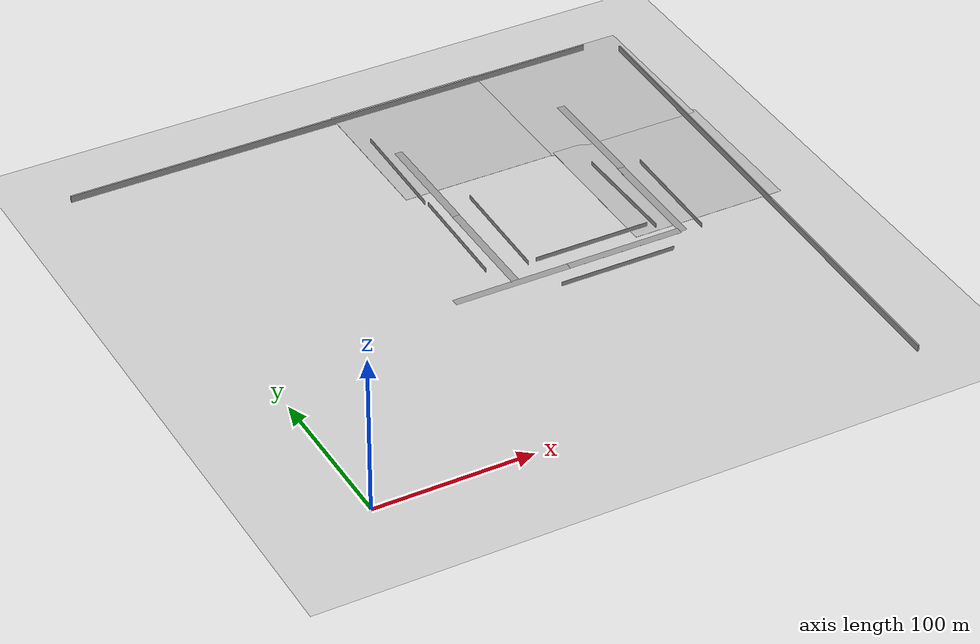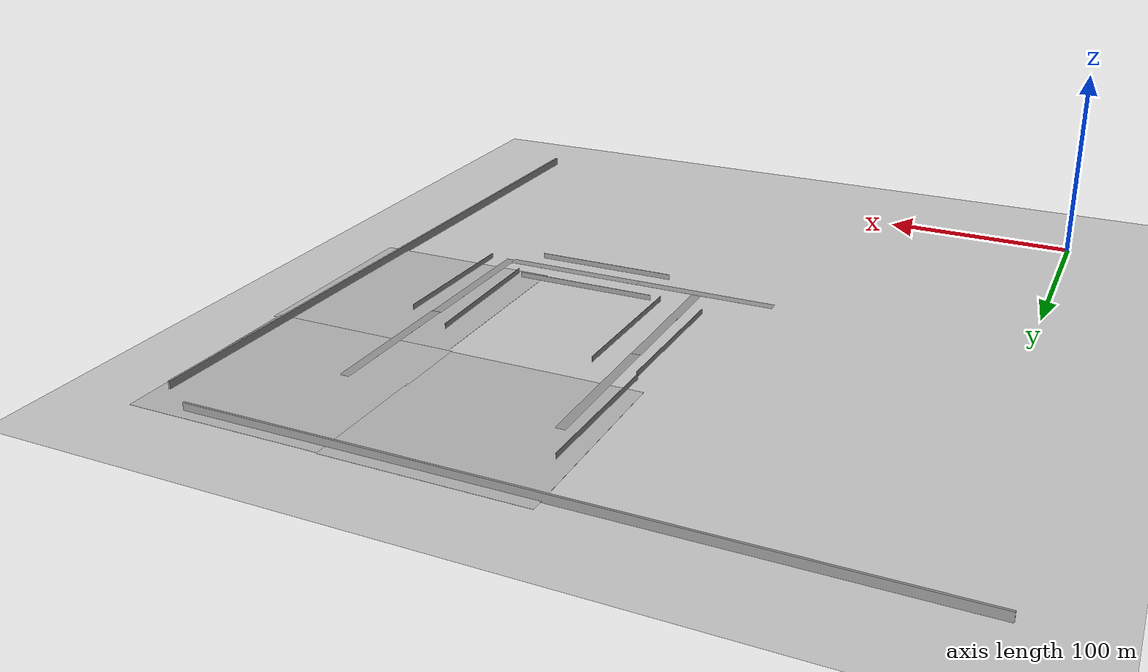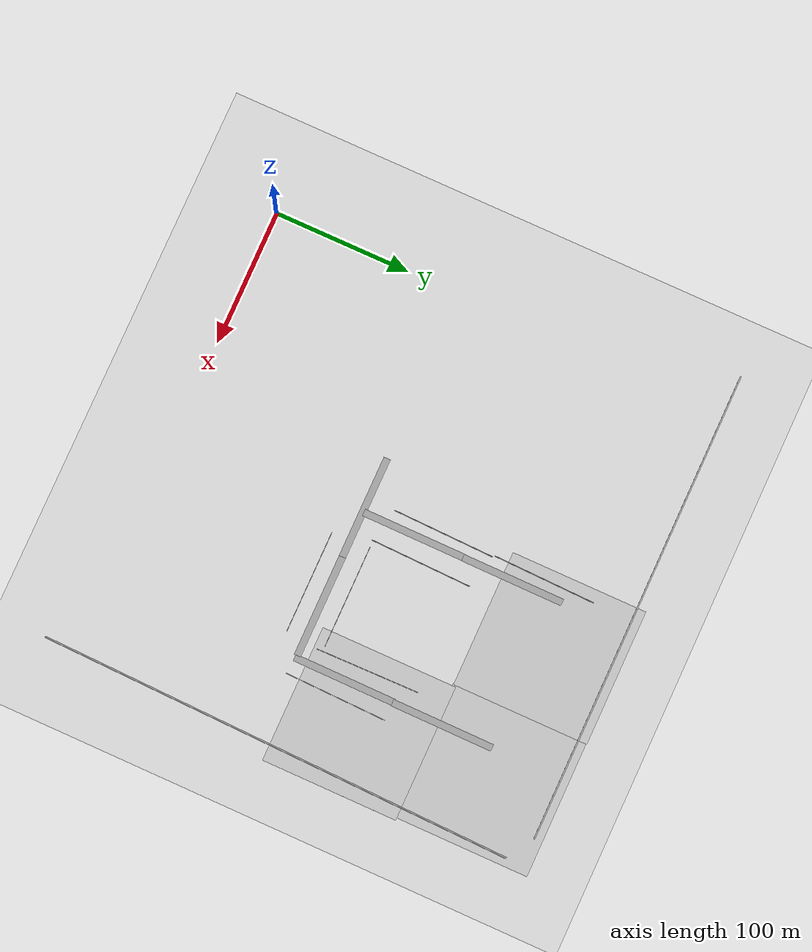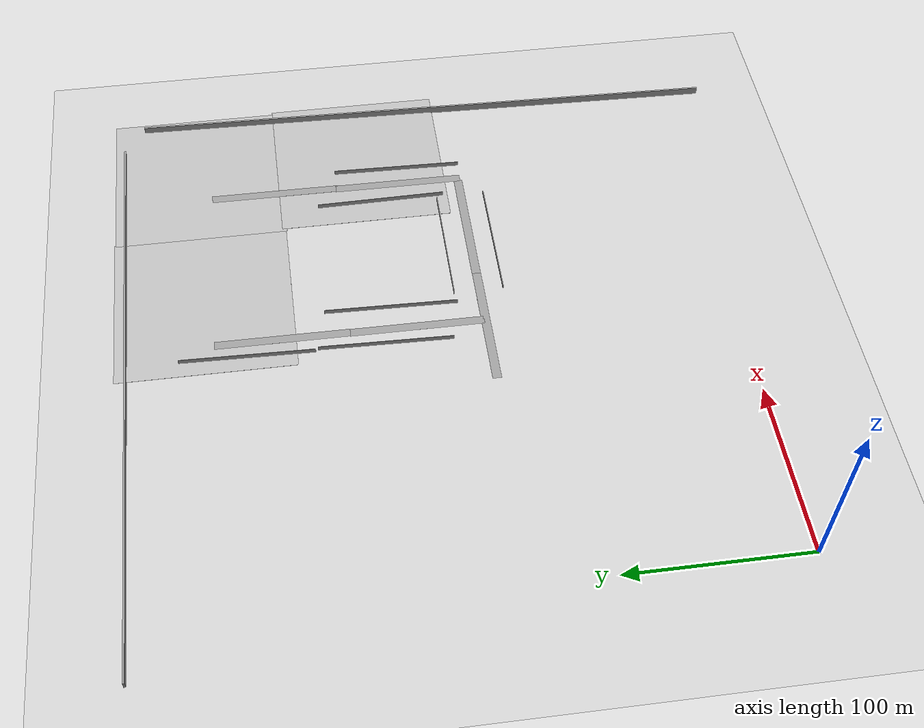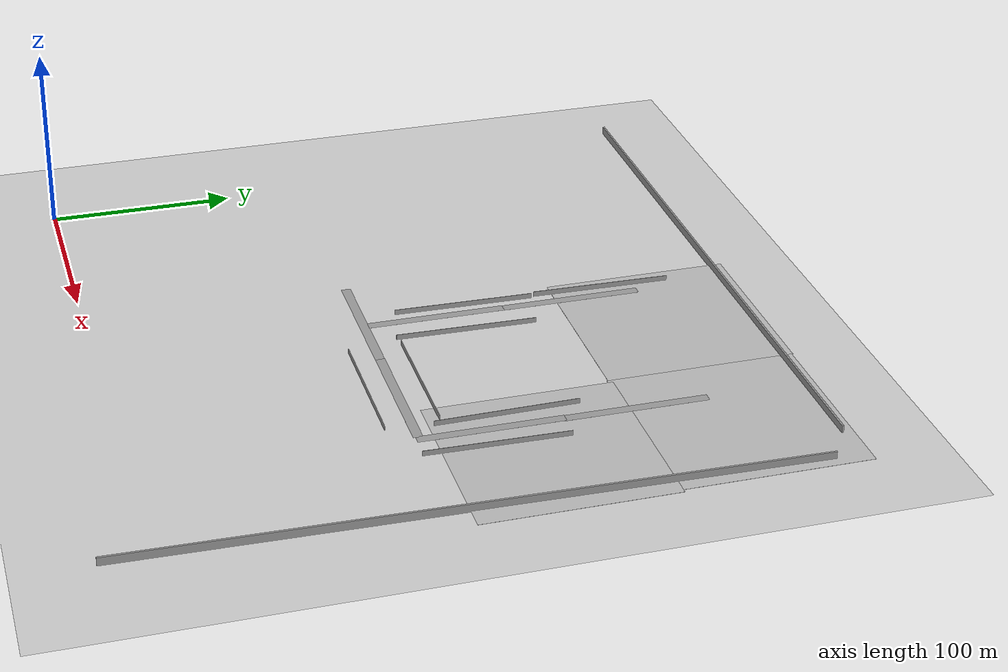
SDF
<sdf version="1.6">
 <world name="default">
  <model name="ground1_10">
   <static>1</static>
   <link name="link">
    <collision name="collision">
     <geometry><plane><normal>0 0 1</normal><size>100 100</size></plane></geometry>
     <surface><friction><ode><mu>100</mu><mu2>50</mu2></ode></friction></surface>
    </collision>
    <visual name="visual">
     <cast_shadows>0</cast_shadows>
     <geometry><plane><normal>0 0 1</normal><size>100 100</size></plane></geometry>
     <material>
      <script>
       <uri>model://ground1/materials/scripts</uri>
       <uri>model://ground1/materials/textures/</uri>
       <name>ground1/Image</name>
      </script>
     </material>
    </visual>
   </link>
   <pose>199.932 196.579 0 0 -0 0</pose>
  </model>
  <model name="ground1_11">
   <static>1</static>
   <link name="link">
    <collision name="collision">
     <geometry><plane><normal>0 0 1</normal><size>100 100</size></plane></geometry>
     <surface><friction><ode><mu>100</mu><mu2>50</mu2></ode></friction></surface>
    </collision>
    <visual name="visual">
     <cast_shadows>0</cast_shadows>
     <geometry><plane><normal>0 0 1</normal><size>100 100</size></plane></geometry>
     <material>
      <script>
       <uri>model://ground1/materials/scripts</uri>
       <uri>model://ground1/materials/textures/</uri>
       <name>ground1/Image</name>
      </script>
     </material>
    </visual>
   </link>
   <pose>198.849 296.294 0 0 -0 0</pose>
  </model>
  <model name="ground1_13">
   <static>1</static>
   <link name="link">
    <collision name="collision">
     <geometry><plane><normal>0 0 1</normal><size>100 100</size></plane></geometry>
     <surface><friction><ode><mu>100</mu><mu2>50</mu2></ode></friction></surface>
    </collision>
    <visual name="visual">
     <cast_shadows>0</cast_shadows>
     <geometry><plane><normal>0 0 1</normal><size>100 100</size></plane></geometry>
     <material>
      <script>
       <uri>model://ground1/materials/scripts</uri>
       <uri>model://ground1/materials/textures/</uri>
       <name>ground1/Image</name>
      </script>
     </material>
    </visual>
   </link>
   <pose>299.867 198.453 0 0 -0 0</pose>
  </model>
  <model name="ground1_14">
   <static>1</static>
   <link name="link">
    <collision name="collision">
     <geometry><plane><normal>0 0 1</normal><size>100 100</size></plane></geometry>
     <surface><friction><ode><mu>100</mu><mu2>50</mu2></ode></friction></surface>
    </collision>
    <visual name="visual">
     <cast_shadows>0</cast_shadows>
     <geometry><plane><normal>0 0 1</normal><size>100 100</size></plane></geometry>
     <material>
      <script>
       <uri>model://ground1/materials/scripts</uri>
       <uri>model://ground1/materials/textures/</uri>
       <name>ground1/Image</name>
      </script>
     </material>
    </visual>
   </link>
   <pose>298.026 295.733 0 0 -0 0</pose>
  </model>
  <model name="grey_wall1_1">
   <static>1</static>
   <link name="link">
    <pose>0 0 1.4 0 -0 0</pose>
    <collision name="collision"><geometry><box><size>350 1 5</size></box></geometry></collision>
    <visual name="visual">
     <cast_shadows>0</cast_shadows>
     <geometry><box><size>350 1 5</size></box></geometry>
     <material>
      <script>
       <uri>model://grey_wall/materials/scripts</uri>
       <uri>model://grey_wall/materials/textures</uri>
       <name>vrc/grey_wall</name>
      </script>
     </material>
    </visual>
   </link>
   <pose>147.982 339.831 0 0 -0 0</pose>
  </model>
  <model name="grey_wall1_2">
   <static>1</static>
   <link name="link">
    <pose>0 0 1.4 0 -0 0</pose>
    <collision name="collision"><geometry><box><size>350 1 5</size></box></geometry></collision>
    <visual name="visual">
     <cast_shadows>0</cast_shadows>
     <geometry><box><size>350 1 5</size></box></geometry>
     <material>
      <script>
       <uri>model://grey_wall/materials/scripts</uri>
       <uri>model://grey_wall/materials/textures</uri>
       <name>vrc/grey_wall</name>
      </script>
     </material>
    </visual>
   </link>
   <pose>338.32 152.894 0 0 0 -1.59375</pose>
  </model>
  <model name="grey_wall2_0">
   <static>1</static>
   <link name="link">
    <pose>0 0 1.4 0 -0 0</pose>
    <collision name="collision"><geometry><box><size>75 5 0.01</size></box></geometry></collision>
    <visual name="visual">
     <cast_shadows>0</cast_shadows>
     <geometry><box><size>75 5 0.01</size></box></geometry>
     <material>
      <script>
       <uri>model://grey_wall/materials/scripts</uri>
       <uri>model://grey_wall/materials/textures</uri>
       <name>vrc/grey_wall</name>
      </script>
     </material>
    </visual>
   </link>
   <pose>162.659 140.628 0 0 -0 0</pose>
  </model>
  <model name="grey_wall2_2">
   <static>1</static>
   <link name="link">
    <pose>0 0 1.4 0 -0 0</pose>
    <collision name="collision"><geometry><box><size>75 5 0.01</size></box></geometry></collision>
    <visual name="visual">
     <cast_shadows>0</cast_shadows>
     <geometry><box><size>75 5 0.01</size></box></geometry>
     <material>
      <script>
       <uri>model://grey_wall/materials/scripts</uri>
       <uri>model://grey_wall/materials/textures</uri>
       <name>vrc/grey_wall</name>
      </script>
     </material>
    </visual>
   </link>
   <pose>237.392 140.68 0 0 -0 0</pose>
  </model>
  <model name="grey_wall2_3_clone_0">
   <static>1</static>
   <link name="link">
    <pose>0 0 1.4 0 -0 0</pose>
    <collision name="collision"><geometry><box><size>75 5 0.01</size></box></geometry></collision>
    <visual name="visual">
     <cast_shadows>0</cast_shadows>
     <geometry><box><size>75 5 0.01</size></box></geometry>
     <material>
      <script>
       <uri>model://grey_wall/materials/scripts</uri>
       <uri>model://grey_wall/materials/textures</uri>
       <name>vrc/grey_wall</name>
      </script>
     </material>
    </visual>
   </link>
   <pose>166.098 178.848 0 0 0 -1.57442</pose>
  </model>
  <model name="grey_wall2_3_clone_1">
   <static>1</static>
   <link name="link">
    <pose>0 0 1.4 0 -0 0</pose>
    <collision name="collision"><geometry><box><size>75 5 0.01</size></box></geometry></collision>
    <visual name="visual">
     <cast_shadows>0</cast_shadows>
     <geometry><box><size>75 5 0.01</size></box></geometry>
     <material>
      <script>
       <uri>model://grey_wall/materials/scripts</uri>
       <uri>model://grey_wall/materials/textures</uri>
       <name>vrc/grey_wall</name>
      </script>
     </material>
    </visual>
   </link>
   <pose>166.572 253.821 0 0 0 -1.57442</pose>
  </model>
  <model name="grey_wall2_3_clone_6">
   <static>1</static>
   <link name="link">
    <pose>0 0 1.4 0 -0 0</pose>
    <collision name="collision"><geometry><box><size>75 5 0.01</size></box></geometry></collision>
    <visual name="visual">
     <cast_shadows>0</cast_shadows>
     <geometry><box><size>75 5 0.01</size></box></geometry>
     <material>
      <script>
       <uri>model://grey_wall/materials/scripts</uri>
       <uri>model://grey_wall/materials/textures</uri>
       <name>vrc/grey_wall</name>
      </script>
     </material>
    </visual>
   </link>
   <pose>276.865 176.837 0 0 0 -1.57442</pose>
  </model>
  <model name="grey_wall2_3_clone_5_clone_1">
   <static>1</static>
   <link name="link">
    <pose>0 0 1.4 0 -0 0</pose>
    <collision name="collision"><geometry><box><size>75 5 0.01</size></box></geometry></collision>
    <visual name="visual">
     <cast_shadows>0</cast_shadows>
     <geometry><box><size>75 5 0.01</size></box></geometry>
     <material>
      <script>
       <uri>model://grey_wall/materials/scripts</uri>
       <uri>model://grey_wall/materials/textures</uri>
       <name>vrc/grey_wall</name>
      </script>
     </material>
    </visual>
   </link>
   <pose>277.538 250.782 0 0 0 -1.57442</pose>
  </model>
  <model name="grey_wall">
   <static>1</static>
   <link name="link">
    <pose>0 0 1.4 0 -0 0</pose>
    <collision name="collision"><geometry><box><size>75 0.2 2.8</size></box></geometry></collision>
    <visual name="visual">
     <cast_shadows>0</cast_shadows>
     <geometry><box><size>75 0.2 2.8</size></box></geometry>
     <material>
      <script>
       <uri>model://grey_wall/materials/scripts</uri>
       <uri>model://grey_wall/materials/textures</uri>
       <name>vrc/grey_wall</name>
      </script>
     </material>
    </visual>
   </link>
   <pose>225.488 127.101 0 0 -0 0</pose>
  </model>
  <model name="grey_wall_0">
   <static>1</static>
   <link name="link">
    <pose>0 0 1.4 0 -0 0</pose>
    <collision name="collision"><geometry><box><size>75 0.2 2.8</size></box></geometry></collision>
    <visual name="visual">
     <cast_shadows>0</cast_shadows>
     <geometry><box><size>75 0.2 2.8</size></box></geometry>
     <material>
      <script>
       <uri>model://grey_wall/materials/scripts</uri>
       <uri>model://grey_wall/materials/textures</uri>
       <name>vrc/grey_wall</name>
      </script>
     </material>
    </visual>
   </link>
   <pose>223.904 155.253 0 0 -0 0</pose>
  </model>
  <model name="grey_wall_clone_clone">
   <static>1</static>
   <link name="link">
    <pose>0 0 1.4 0 -0 0</pose>
    <collision name="collision"><geometry><box><size>75 0.2 2.8</size></box></geometry></collision>
    <visual name="visual">
     <cast_shadows>0</cast_shadows>
     <geometry><box><size>75 0.2 2.8</size></box></geometry>
     <material>
      <script>
       <uri>model://grey_wall/materials/scripts</uri>
       <uri>model://grey_wall/materials/textures</uri>
       <name>vrc/grey_wall</name>
      </script>
     </material>
    </visual>
   </link>
   <pose>264.594 188.672 0 0 0 -1.55588</pose>
  </model>
  <model name="grey_wall_clone_clone_0_clone">
   <static>1</static>
   <link name="link">
    <pose>0 0 1.4 0 -0 0</pose>
    <collision name="collision"><geometry><box><size>75 0.2 2.8</size></box></geometry></collision>
    <visual name="visual">
     <cast_shadows>0</cast_shadows>
     <geometry><box><size>75 0.2 2.8</size></box></geometry>
     <material>
      <script>
       <uri>model://grey_wall/materials/scripts</uri>
       <uri>model://grey_wall/materials/textures</uri>
       <name>vrc/grey_wall</name>
      </script>
     </material>
    </visual>
   </link>
   <pose>289.875 176.228 0 0 0 -1.59331</pose>
  </model>
  <model name="grey_wall_clone_clone_0_clone_1">
   <static>1</static>
   <link name="link">
    <pose>0 0 1.4 0 -0 0</pose>
    <collision name="collision"><geometry><box><size>75 0.2 2.8</size></box></geometry></collision>
    <visual name="visual">
     <cast_shadows>0</cast_shadows>
     <geometry><box><size>75 0.2 2.8</size></box></geometry>
     <material>
      <script>
       <uri>model://grey_wall/materials/scripts</uri>
       <uri>model://grey_wall/materials/textures</uri>
       <name>vrc/grey_wall</name>
      </script>
     </material>
    </visual>
   </link>
   <pose>181.945 191.745 0 0 0 -1.59331</pose>
  </model>
  <model name="grey_wall_clone_clone_0_clone_2">
   <static>1</static>
   <link name="link">
    <pose>0 0 1.4 0 -0 0</pose>
    <collision name="collision"><geometry><box><size>75 0.2 2.8</size></box></geometry></collision>
    <visual name="visual">
     <cast_shadows>0</cast_shadows>
     <geometry><box><size>75 0.2 2.8</size></box></geometry>
     <material>
      <script>
       <uri>model://grey_wall/materials/scripts</uri>
       <uri>model://grey_wall/materials/textures</uri>
       <name>vrc/grey_wall</name>
      </script>
     </material>
    </visual>
   </link>
   <pose>156.79 197.253 0 0 0 -1.59331</pose>
  </model>
  <model name="grey_wall_clone_clone_0_clone_3">
   <static>1</static>
   <link name="link">
    <pose>0 0 1.4 0 -0 0</pose>
    <collision name="collision"><geometry><box><size>75 0.2 2.8</size></box></geometry></collision>
    <visual name="visual">
     <cast_shadows>0</cast_shadows>
     <geometry><box><size>75 0.2 2.8</size></box></geometry>
     <material>
      <script>
       <uri>model://grey_wall/materials/scripts</uri>
       <uri>model://grey_wall/materials/textures</uri>
       <name>vrc/grey_wall</name>
      </script>
     </material>
    </visual>
   </link>
   <pose>157.268 273.691 0 0 0 -1.59331</pose>
  </model>
 </world>
</sdf>
